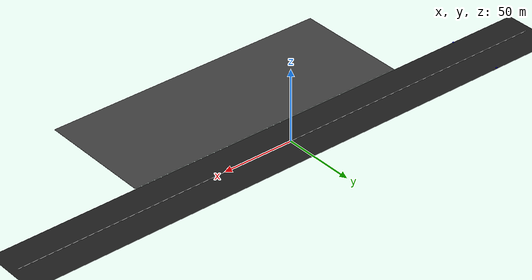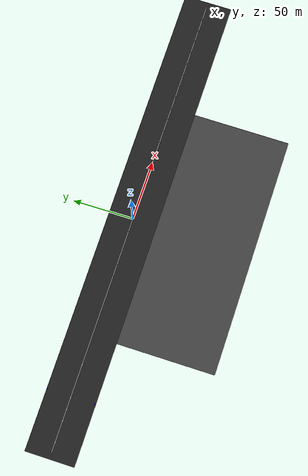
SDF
<sdf version="1.9">
 <world name="airport">
  <plugin filename="gz-sim-physics-system" name="gz::sim::systems::Physics"/>
  <plugin filename="gz-sim-scene-broadcaster-system" name="gz::sim::systems::SceneBroadcaster"/>
  <plugin filename="gz-sim-sensors-system" name="gz::sim::systems::Sensors"/>
  <plugin filename="gz-sim-user-commands-system" name="gz::sim::systems::UserCommands"/>
  <light type="directional" name="sun">
   <direction>-0.5 0.1 -0.9</direction>
   <diffuse>1 1 1 1</diffuse>
   <specular>0.5 0.5 0.5 1</specular>
  </light>
  <model name="runway">
   <static>true</static>
   <link name="link">
    <collision name="collision">
     <geometry><plane><normal>0 0 1</normal><size>400 40</size></plane></geometry>
    </collision>
    <visual name="visual">
     <geometry><plane><normal>0 0 1</normal><size>400 40</size></plane></geometry>
     <material><ambient>0.12 0.12 0.12 1</ambient><diffuse>0.12 0.12 0.12 1</diffuse></material>
    </visual>
    <visual name="centerline">
     <pose>0 0 0.01 0 0 0</pose>
     <geometry><box><size>390 0.5 0.01</size></box></geometry>
     <material><diffuse>1 1 1 1</diffuse></material>
    </visual>
    <visual name="edge_left">
     <pose>-150 -19.5 0.05 0 0 0</pose>
     <geometry><box><size>1 1 0.1</size></box></geometry>
     <material><diffuse>0 0 1 1</diffuse></material>
    </visual>
    <visual name="edge_right">
     <pose>-150  19.5 0.05 0 0 0</pose>
     <geometry><box><size>1 1 0.1</size></box></geometry>
     <material><diffuse>0 0 1 1</diffuse></material>
    </visual>
   </link>
  </model>
  <model name="apron">
   <static>true</static>
   <pose>0 -60 0 0 0 0</pose>
   <link name="link">
    <collision name="collision">
     <geometry><plane><normal>0 0 1</normal><size>200 80</size></plane></geometry>
    </collision>
    <visual name="visual">
     <geometry><plane><normal>0 0 1</normal><size>200 80</size></plane></geometry>
     <material><ambient>0.25 0.25 0.25 1</ambient><diffuse>0.25 0.25 0.25 1</diffuse></material>
    </visual>
   </link>
  </model>
 </world>
</sdf>
